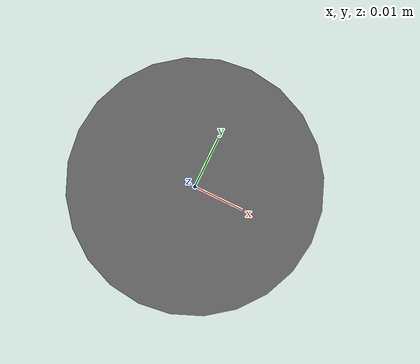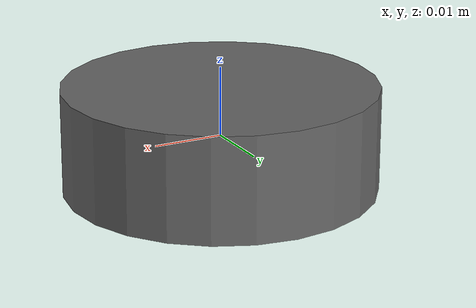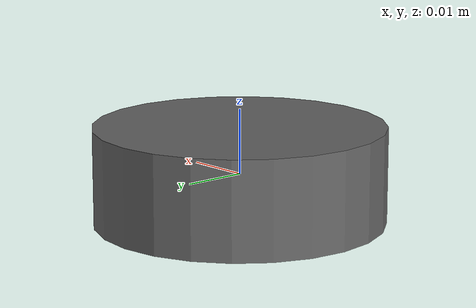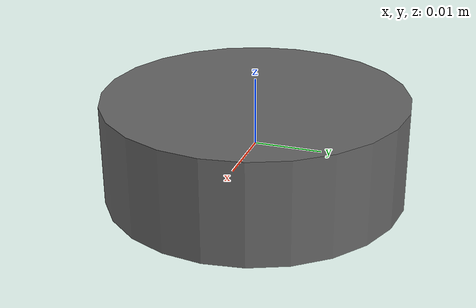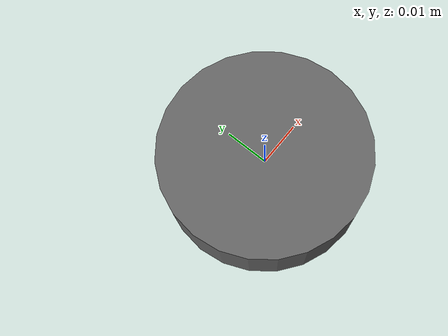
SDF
<?xml version="1.0" ?>
<sdf version="1.6">
  <model name="nut_m30">
    <link name="link">
      <inertial>
        <mass>0.217</mass>
        <inertia>
          <ixx>4.5e-05</ixx>
          <ixy>0</ixy>
          <ixz>0</ixz>
          <iyy>4.5e-05</iyy>
          <iyz>0</iyz>
          <izz>8.5e-05</izz>
        </inertia>
      </inertial>
      <collision name="collision">
        <geometry>
          <cylinder>
            <radius>0.0225</radius>
            <length>0.015</length>
          </cylinder>
        </geometry>
      </collision>
      <visual name="visual">
        <geometry>
          <cylinder>
            <radius>0.0225</radius>
            <length>0.015</length>
          </cylinder>
        </geometry>
        <material>
          <ambient>0.4 0.4 0.4 1</ambient>
          <diffuse>0.4 0.4 0.4 1</diffuse>
        </material>
      </visual>
    </link>
  </model>
</sdf>
